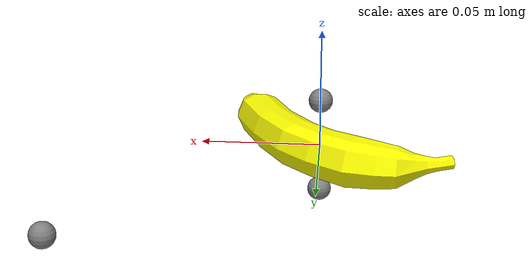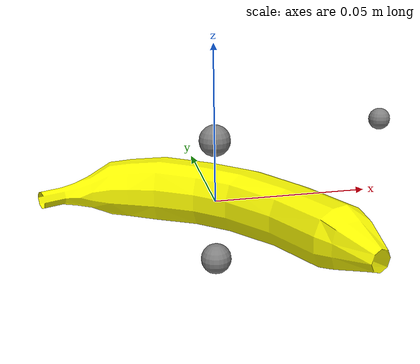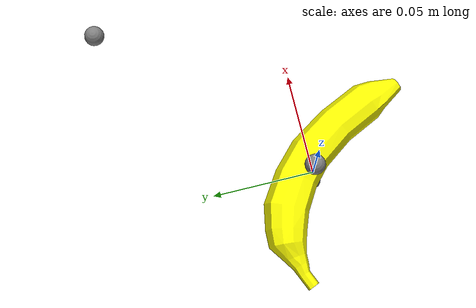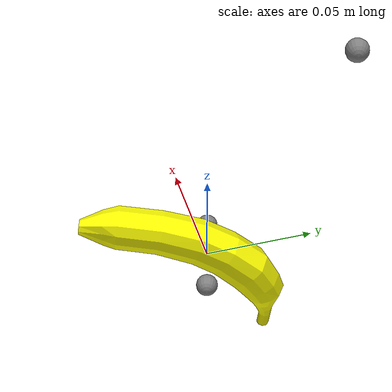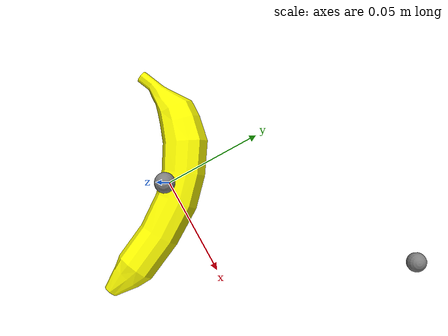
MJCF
<!-- sample of a general object defined in mujoco -->
<mujoco model="banana">
	<asset>
		<mesh file="meshes/banana.stl" name="banana_mesh" scale="0.5 0.5 0.5"/>
		<texture file="../textures/metal.png" type="2d" name="tex-metal"/>
		<material name="metal" reflectance="0.7" texrepeat="1 1" texture="tex-metal" texuniform="true"/>
	</asset>
	<worldbody>
		<body>
			<body name="collision">
				<geom pos="0 0 0" mesh="banana_mesh" type="mesh" solimp="0.998 0.998 0.001" solref="0.001 1" density="500" friction="0.5"  rgba="1 1 0 1" group="1"/>
			</body>
			<body name="visual">
				<geom pos="0 0 0" mesh="banana_mesh" type="mesh" rgba="1 1 0 1"  conaffinity="0" contype="0"  group="1"/>
			</body>
			<site pos="0 0 -0.02" name="bottom_site"/>
			<site pos="0 0 0.02" name="top_site"/>
			<site pos="0.095 0.09 0" name="horizontal_radius_site"/>
		</body>
	</worldbody>
</mujoco>
